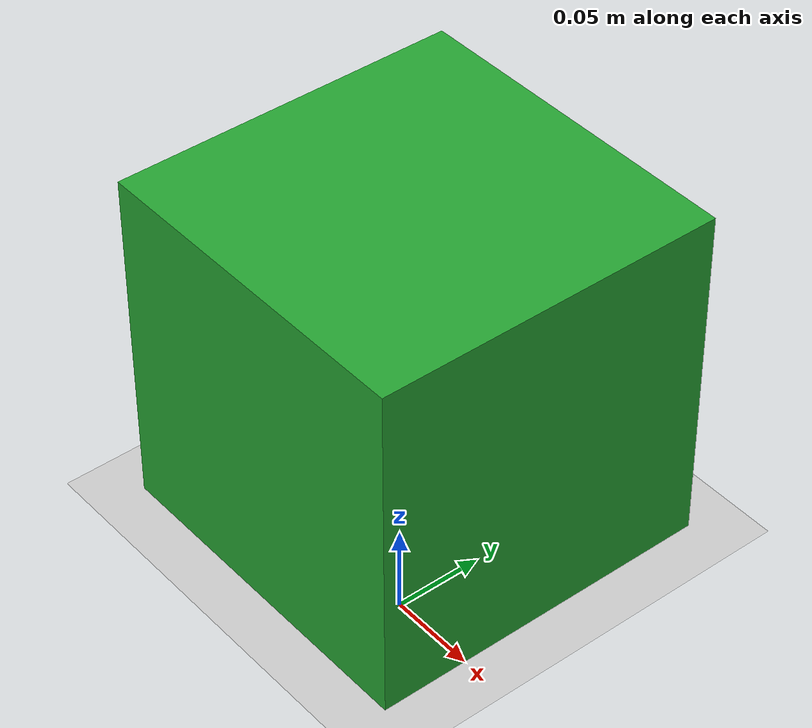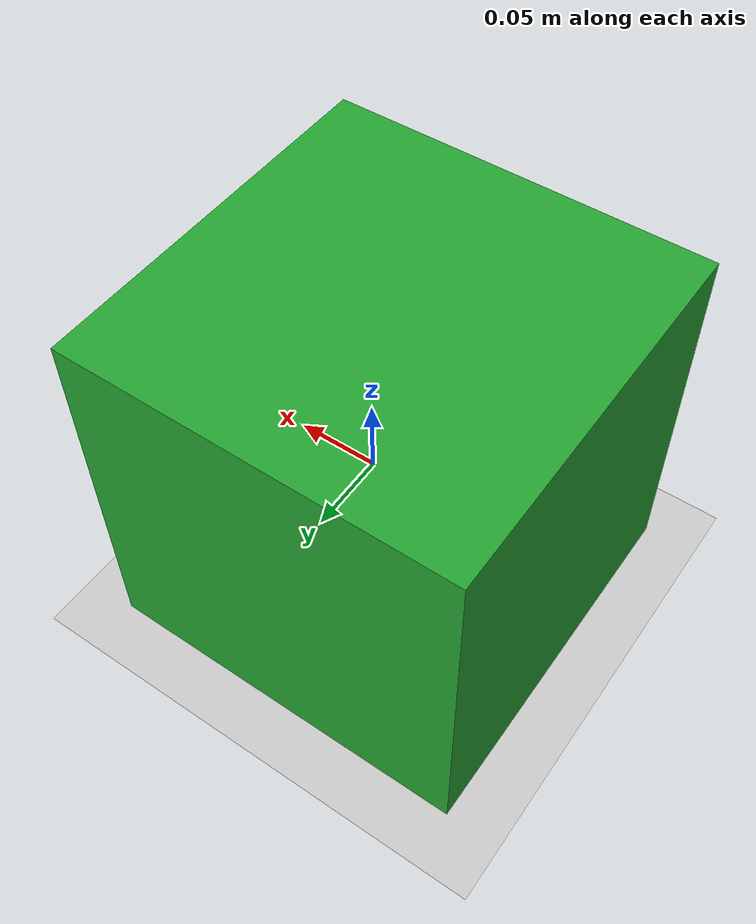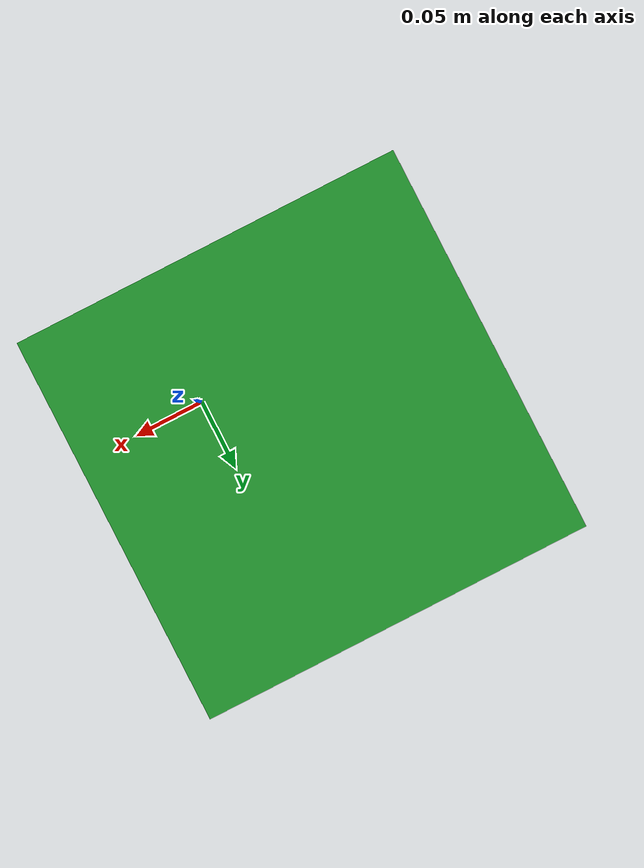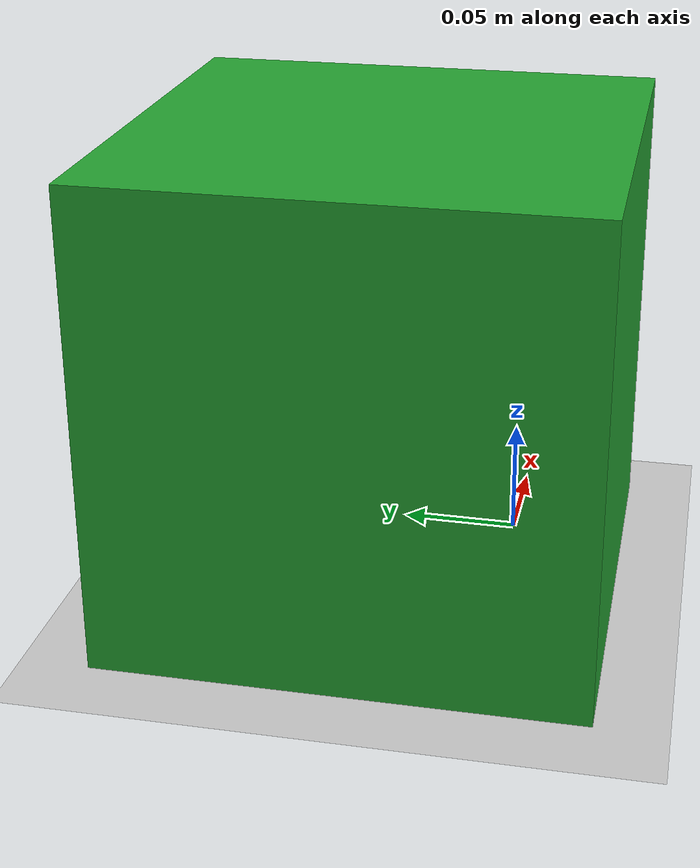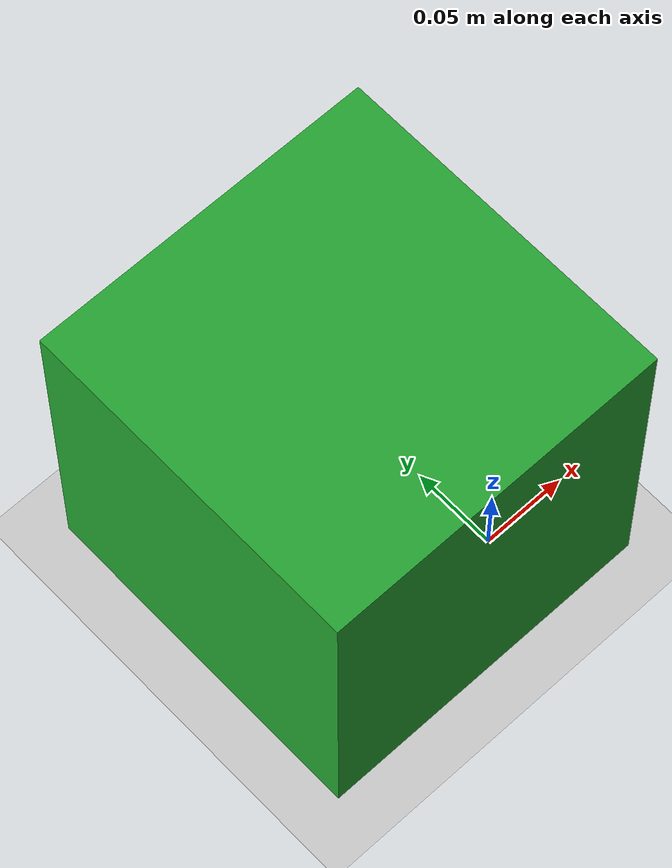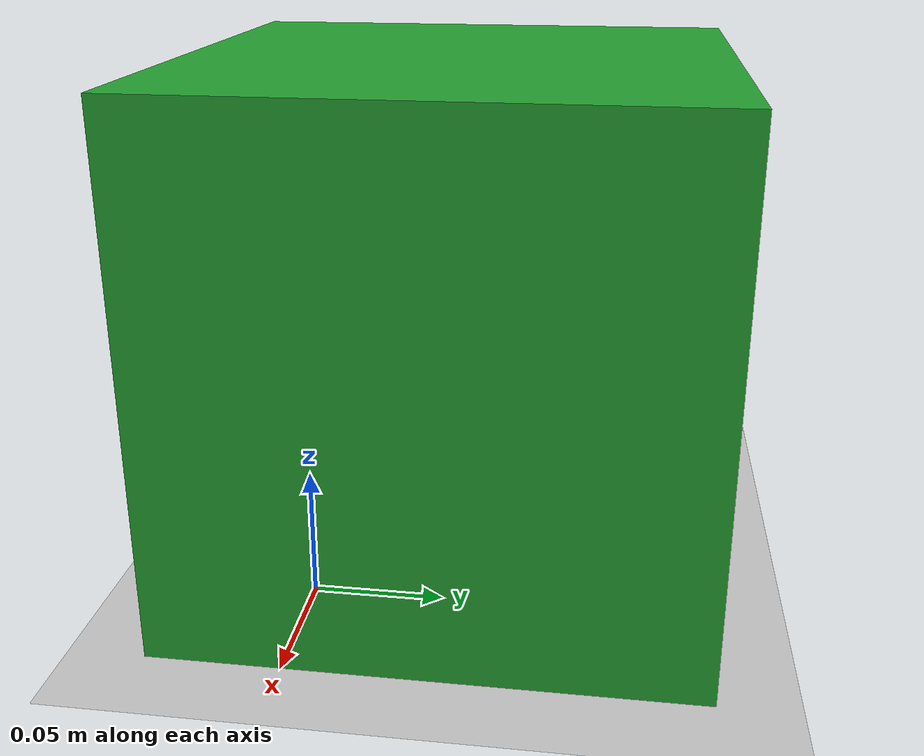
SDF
<sdf version="1.7">
 <world name="mysky">
  <scene>
   <ambient>0.75 0.75 0.75 1</ambient>
   <background>0.5 0.5 0.5 1</background>
   <sky><clouds><speed>10</speed></clouds></sky>
   <shadows>1</shadows>
  </scene>
  <light name="sun" type="directional">
   <pose>0 0 10 0 -0 0</pose>
   <diffuse>0.8 0.8 0.8 1</diffuse>
   <specular>0.2 0.2 0.2 1</specular>
   <attenuation>
    <range>1000</range>
    <constant>0.9</constant>
    <linear>0.01</linear>
    <quadratic>0.001</quadratic>
   </attenuation>
   <direction>-0.5 0.1 -0.9</direction>
   <spot><inner_angle>0</inner_angle><outer_angle>0</outer_angle><falloff>0</falloff></spot>
  </light>
  <model name="ground_plane">
   <static>1</static>
   <link name="link">
    <collision name="collision">
     <geometry><plane><normal>0 0 1</normal><size>100 100</size></plane></geometry>
     <surface>
      <contact><collide_bitmask>65535</collide_bitmask></contact>
      <friction><ode><mu>100</mu><mu2>50</mu2></ode></friction>
     </surface>
    </collision>
    <visual name="visual">
     <cast_shadows>0</cast_shadows>
     <geometry><plane><normal>0 0 1</normal><size>100 100</size></plane></geometry>
     <material>
      <script><uri>file://media/materials/scripts/gazebo.material</uri><name>Gazebo/Grey</name></script>
     </material>
    </visual>
   </link>
  </model>
  <gravity>0 0 -9.8</gravity>
  <magnetic_field>6e-06 2.3e-05 -4.2e-05</magnetic_field>
  <atmosphere type="adiabatic"/>
  <physics type="ode">
   <max_step_size>0.001</max_step_size>
   <real_time_factor>1</real_time_factor>
   <real_time_update_rate>1000</real_time_update_rate>
  </physics>
  <spherical_coordinates>
   <surface_model>EARTH_WGS84</surface_model>
   <latitude_deg>0</latitude_deg>
   <longitude_deg>0</longitude_deg>
   <elevation>0</elevation>
   <heading_deg>0</heading_deg>
  </spherical_coordinates>
  <model name="boxs1">
   <link name="base">
    <inertial>
     <mass>10</mass>
     <inertia><ixx>0.001</ixx><ixy>0</ixy><ixz>0</ixz><iyy>0.001</iyy><iyz>0</iyz><izz>0.001</izz></inertia>
    </inertial>
    <collision name="base_collision"><geometry><box><size>0.2 0.2 0.2</size></box></geometry></collision>
    <visual name="base_visual">
     <geometry><box><size>0.2 0.2 0.2</size></box></geometry>
     <material>
      <script><name>Gazebo/Green</name><uri>file://media/materials/scripts/gazebo.material</uri></script>
     </material>
    </visual>
   </link>
   <pose>-0.050015 0.050327 0.099999 3e-06 -3.2e-05 -0.001484</pose>
  </model>
 </world>
</sdf>
